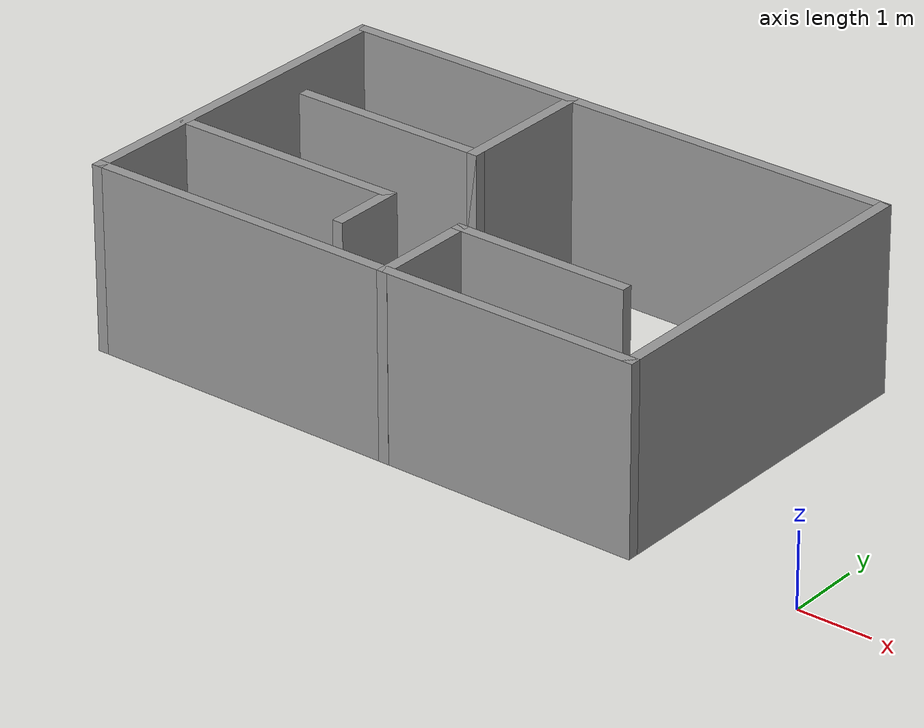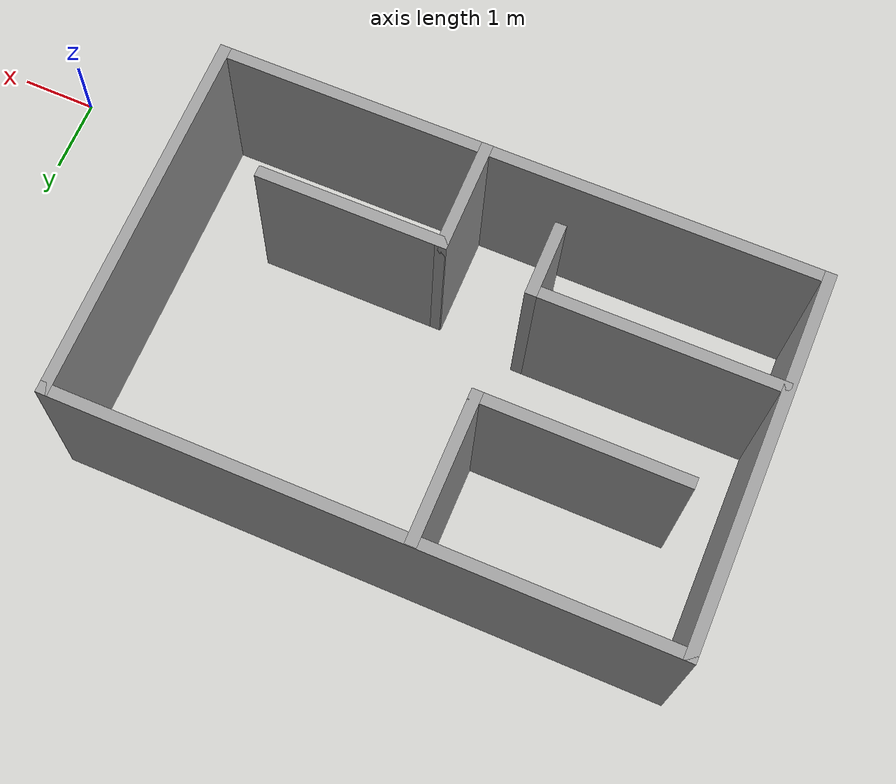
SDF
<?xml version='1.0'?>
<sdf version='1.7'>
  <model name='room'>
    <pose>-5.0521 2.19872 0 0 -0 0</pose>
    <link name='Wall_10'>
      <collision name='Wall_10_Collision'>
        <geometry>
          <box>
            <size>5 0.15 2.5</size>
          </box>
        </geometry>
        <pose>0 0 1.25 0 -0 0</pose>
      </collision>
      <visual name='Wall_10_Visual'>
        <pose>0 0 1.25 0 -0 0</pose>
        <geometry>
          <box>
            <size>5 0.15 2.5</size>
          </box>
        </geometry>
        <material>
          <script>
            <uri>file://media/materials/scripts/gazebo.material</uri>
            <name>Gazebo/Grey</name>
          </script>
          <ambient>1 1 1 1</ambient>
        </material>
        <meta>
          <layer>0</layer>
        </meta>
      </visual>
      <pose>-4.9771 0.000716 0 0 -0 1.5708</pose>
    </link>
    <link name='Wall_12'>
      <collision name='Wall_12_Collision'>
        <geometry>
          <box>
            <size>2 0.15 2.5</size>
          </box>
        </geometry>
        <pose>0 0 1.25 0 -0 0</pose>
      </collision>
      <visual name='Wall_12_Visual'>
        <pose>0 0 1.25 0 -0 0</pose>
        <geometry>
          <box>
            <size>2 0.15 2.5</size>
          </box>
        </geometry>
        <material>
          <script>
            <uri>file://media/materials/scripts/gazebo.material</uri>
            <name>Gazebo/Grey</name>
          </script>
          <ambient>1 1 1 1</ambient>
        </material>
        <meta>
          <layer>0</layer>
        </meta>
      </visual>
      <pose>-1.70715 1.49403 0 0 -0 -1.5708</pose>
    </link>
    <link name='Wall_13'>
      <collision name='Wall_13_Collision'>
        <geometry>
          <box>
            <size>2.75 0.15 2.5</size>
          </box>
        </geometry>
        <pose>0 0 1.25 0 -0 0</pose>
      </collision>
      <visual name='Wall_13_Visual'>
        <pose>0 0 1.25 0 -0 0</pose>
        <geometry>
          <box>
            <size>2.75 0.15 2.5</size>
          </box>
        </geometry>
        <material>
          <script>
            <uri>file://media/materials/scripts/gazebo.material</uri>
            <name>Gazebo/Grey</name>
          </script>
          <ambient>1 1 1 1</ambient>
        </material>
        <meta>
          <layer>0</layer>
        </meta>
      </visual>
      <pose>-3.00715 0.569031 0 0 -0 3.14159</pose>
    </link>
    <link name='Wall_15'>
      <collision name='Wall_15_Collision'>
        <geometry>
          <box>
            <size>3.25 0.15 2.5</size>
          </box>
        </geometry>
        <pose>0 0 1.25 0 -0 0</pose>
      </collision>
      <visual name='Wall_15_Visual'>
        <pose>0 0 1.25 0 -0 0</pose>
        <geometry>
          <box>
            <size>3.25 0.15 2.5</size>
          </box>
        </geometry>
        <material>
          <script>
            <uri>file://media/materials/scripts/gazebo.material</uri>
            <name>Gazebo/Grey</name>
          </script>
          <ambient>1 1 1 1</ambient>
        </material>
        <meta>
          <layer>0</layer>
        </meta>
      </visual>
      <pose>-3.37532 -0.921571 0 0 -0 0</pose>
    </link>
    <link name='Wall_16'>
      <collision name='Wall_16_Collision'>
        <geometry>
          <box>
            <size>1 0.15 2.5</size>
          </box>
        </geometry>
        <pose>0 0 1.25 0 -0 0</pose>
      </collision>
      <visual name='Wall_16_Visual'>
        <pose>0 0 1.25 0 -0 0</pose>
        <geometry>
          <box>
            <size>1 0.15 2.5</size>
          </box>
        </geometry>
        <material>
          <script>
            <uri>file://media/materials/scripts/gazebo.material</uri>
            <name>Gazebo/Grey</name>
          </script>
          <ambient>1 1 1 1</ambient>
        </material>
        <meta>
          <layer>0</layer>
        </meta>
      </visual>
      <pose>-1.82532 -1.34657 0 0 -0 -1.5708</pose>
    </link>
    <link name='Wall_21'>
      <collision name='Wall_21_Collision'>
        <geometry>
          <box>
            <size>1.5 0.15 2.5</size>
          </box>
        </geometry>
        <pose>0 0 1.25 0 -0 0</pose>
      </collision>
      <visual name='Wall_21_Visual'>
        <pose>0 0 1.25 0 -0 0</pose>
        <geometry>
          <box>
            <size>1.5 0.15 2.5</size>
          </box>
        </geometry>
        <material>
          <script>
            <uri>file://media/materials/scripts/gazebo.material</uri>
            <name>Gazebo/Grey</name>
          </script>
          <ambient>1 1 1 1</ambient>
        </material>
        <meta>
          <layer>0</layer>
        </meta>
      </visual>
      <pose>-0.622763 -1.75072 0 0 -0 1.5708</pose>
    </link>
    <link name='Wall_22'>
      <collision name='Wall_22_Collision'>
        <geometry>
          <box>
            <size>2.5 0.15 2.5</size>
          </box>
        </geometry>
        <pose>0 0 1.25 0 -0 0</pose>
      </collision>
      <visual name='Wall_22_Visual'>
        <pose>0 0 1.25 0 -0 0</pose>
        <geometry>
          <box>
            <size>2.5 0.15 2.5</size>
          </box>
        </geometry>
        <material>
          <script>
            <uri>file://media/materials/scripts/gazebo.material</uri>
            <name>Gazebo/Grey</name>
          </script>
          <ambient>1 1 1 1</ambient>
        </material>
        <meta>
          <layer>0</layer>
        </meta>
      </visual>
      <pose>0.552238 -1.07572 0 0 -0 0</pose>
    </link>
    <link name='Wall_5'>
      <collision name='Wall_5_Collision'>
        <geometry>
          <box>
            <size>8 0.15 2.5</size>
          </box>
        </geometry>
        <pose>0 0 1.25 0 -0 0</pose>
      </collision>
      <visual name='Wall_5_Visual'>
        <pose>0 0 1.25 0 -0 0</pose>
        <geometry>
          <box>
            <size>8 0.15 2.5</size>
          </box>
        </geometry>
        <material>
          <script>
            <uri>file://media/materials/scripts/gazebo.material</uri>
            <name>Gazebo/Grey</name>
          </script>
          <ambient>1 1 1 1</ambient>
        </material>
        <meta>
          <layer>0</layer>
        </meta>
      </visual>
      <pose>-1.0521 2.42572 0 0 -0 0</pose>
    </link>
    <link name='Wall_7'>
      <collision name='Wall_7_Collision'>
        <geometry>
          <box>
            <size>5 0.15 2.5</size>
          </box>
        </geometry>
        <pose>0 0 1.25 0 -0 0</pose>
      </collision>
      <visual name='Wall_7_Visual'>
        <pose>0 0 1.25 0 -0 0</pose>
        <geometry>
          <box>
            <size>5 0.15 2.5</size>
          </box>
        </geometry>
        <material>
          <script>
            <uri>file://media/materials/scripts/gazebo.material</uri>
            <name>Gazebo/Grey</name>
          </script>
          <ambient>1 1 1 1</ambient>
        </material>
        <meta>
          <layer>0</layer>
        </meta>
      </visual>
      <pose>2.8729 0.000716 0 0 -0 -1.5708</pose>
    </link>
    <link name='Wall_9'>
      <collision name='Wall_9_Collision'>
        <geometry>
          <box>
            <size>8 0.15 2.5</size>
          </box>
        </geometry>
        <pose>0 0 1.25 0 -0 0</pose>
      </collision>
      <visual name='Wall_9_Visual'>
        <pose>0 0 1.25 0 -0 0</pose>
        <geometry>
          <box>
            <size>8 0.15 2.5</size>
          </box>
        </geometry>
        <material>
          <script>
            <uri>file://media/materials/scripts/gazebo.material</uri>
            <name>Gazebo/Grey</name>
          </script>
          <ambient>1 1 1 1</ambient>
        </material>
        <meta>
          <layer>0</layer>
        </meta>
      </visual>
      <pose>-1.0521 -2.42428 0 0 -0 3.14159</pose>
    </link>
    <static>1</static>
  </model>
</sdf>
